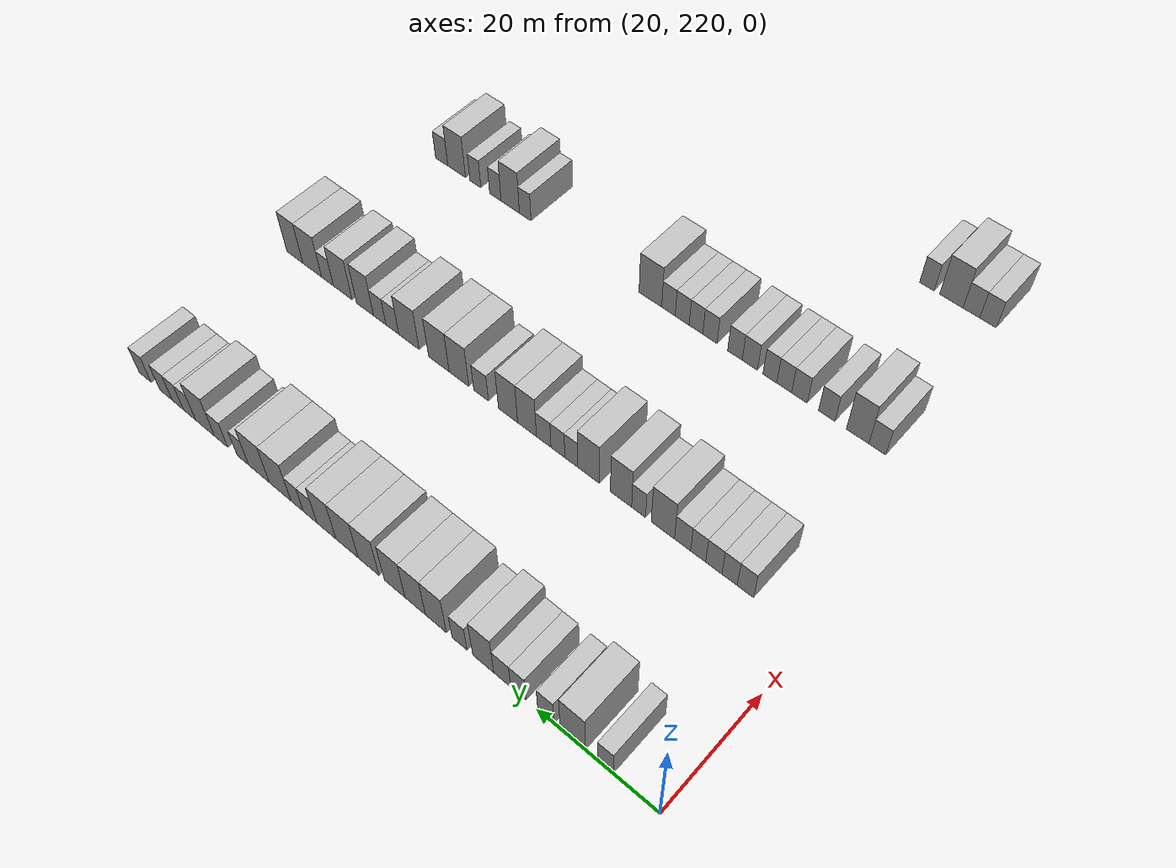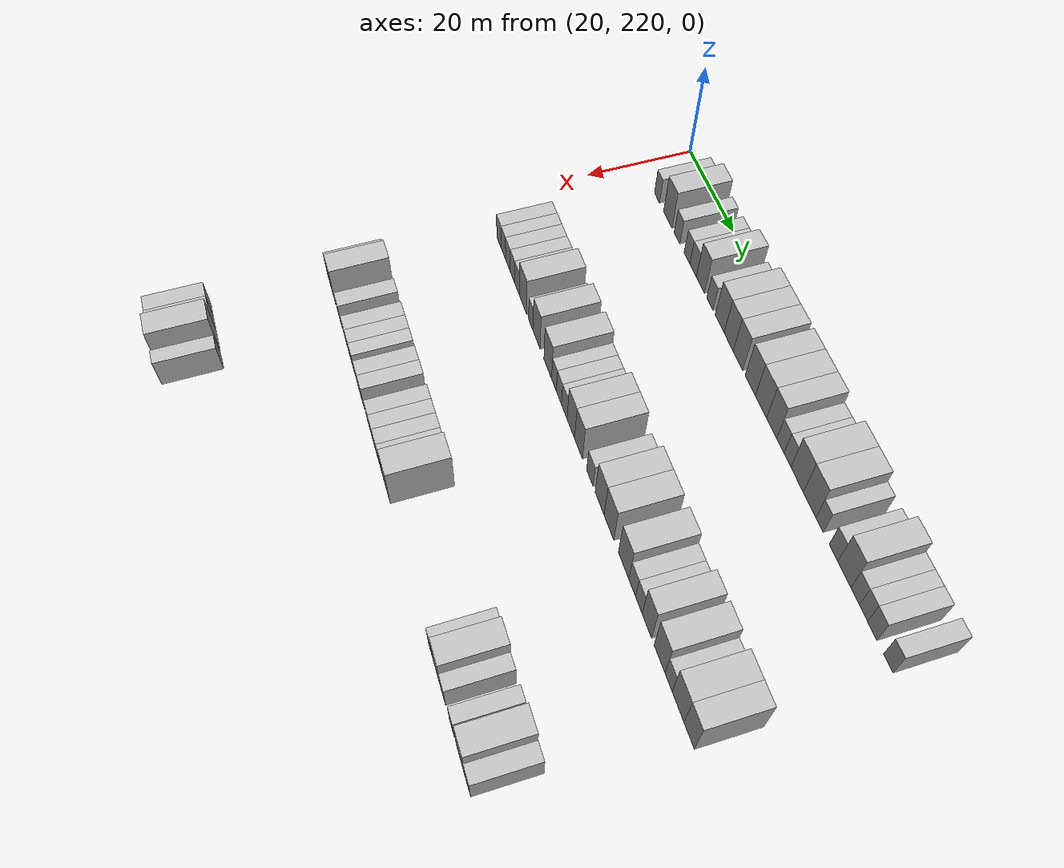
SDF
<sdf version="1.6">
 <world name="default">
  <model name="building_161">
   <static>1</static>
   <pose>25.0000 228.7055 0 0.000000 0.000000 0.000000</pose>
   <link name="link">
    <pose>0 0 3.00 0 0 0</pose>
    <collision name="collision"><geometry><box><size>10.0000 2.4988 6.0000</size></box></geometry></collision>
    <visual name="visual">
     <cast_shadows>0</cast_shadows>
     <geometry><box><size>10.0000 2.4988 6.0000</size></box></geometry>
     <material>
      <script>
       <uri>model://HANNAS_wall/materials/scripts</uri>
       <uri>model://HANNAS_wall/materials/textures</uri>
       <name>vrc/HANNAS_wall</name>
      </script>
     </material>
    </visual>
   </link>
  </model>
  <model name="building_162">
   <static>1</static>
   <pose>25.0000 234.0125 0 0.000000 0.000000 0.000000</pose>
   <link name="link">
    <pose>0 0 4.50 0 0 0</pose>
    <collision name="collision"><geometry><box><size>10.0000 4.1152 9.0000</size></box></geometry></collision>
    <visual name="visual">
     <cast_shadows>0</cast_shadows>
     <geometry><box><size>10.0000 4.1152 9.0000</size></box></geometry>
     <material>
      <script>
       <uri>model://HANNAS_wall/materials/scripts</uri>
       <uri>model://HANNAS_wall/materials/textures</uri>
       <name>vrc/HANNAS_wall</name>
      </script>
     </material>
    </visual>
   </link>
  </model>
  <model name="building_163">
   <static>1</static>
   <pose>25.0000 238.4279 0 0.000000 0.000000 0.000000</pose>
   <link name="link">
    <pose>0 0 3.00 0 0 0</pose>
    <collision name="collision"><geometry><box><size>10.0000 2.7155 6.0000</size></box></geometry></collision>
    <visual name="visual">
     <cast_shadows>0</cast_shadows>
     <geometry><box><size>10.0000 2.7155 6.0000</size></box></geometry>
     <material>
      <script>
       <uri>model://HANNAS_wall/materials/scripts</uri>
       <uri>model://HANNAS_wall/materials/textures</uri>
       <name>vrc/HANNAS_wall</name>
      </script>
     </material>
    </visual>
   </link>
  </model>
  <model name="building_164">
   <static>1</static>
   <pose>25.0000 243.0914 0 0.000000 0.000000 0.000000</pose>
   <link name="link">
    <pose>0 0 3.00 0 0 0</pose>
    <collision name="collision"><geometry><box><size>10.0000 2.6115 6.0000</size></box></geometry></collision>
    <visual name="visual">
     <cast_shadows>0</cast_shadows>
     <geometry><box><size>10.0000 2.6115 6.0000</size></box></geometry>
     <material>
      <script>
       <uri>model://HANNAS_wall/materials/scripts</uri>
       <uri>model://HANNAS_wall/materials/textures</uri>
       <name>vrc/HANNAS_wall</name>
      </script>
     </material>
    </visual>
   </link>
  </model>
  <model name="building_165">
   <static>1</static>
   <pose>25.0000 245.8708 0 0.000000 0.000000 0.000000</pose>
   <link name="link">
    <pose>0 0 3.00 0 0 0</pose>
    <collision name="collision"><geometry><box><size>10.0000 2.9474 6.0000</size></box></geometry></collision>
    <visual name="visual">
     <cast_shadows>0</cast_shadows>
     <geometry><box><size>10.0000 2.9474 6.0000</size></box></geometry>
     <material>
      <script>
       <uri>model://HANNAS_wall/materials/scripts</uri>
       <uri>model://HANNAS_wall/materials/textures</uri>
       <name>vrc/HANNAS_wall</name>
      </script>
     </material>
    </visual>
   </link>
  </model>
  <model name="building_166">
   <static>1</static>
   <pose>25.0000 249.1885 0 0.000000 0.000000 0.000000</pose>
   <link name="link">
    <pose>0 0 4.50 0 0 0</pose>
    <collision name="collision"><geometry><box><size>10.0000 3.6880 9.0000</size></box></geometry></collision>
    <visual name="visual">
     <cast_shadows>0</cast_shadows>
     <geometry><box><size>10.0000 3.6880 9.0000</size></box></geometry>
     <material>
      <script>
       <uri>model://HANNAS_wall/materials/scripts</uri>
       <uri>model://HANNAS_wall/materials/textures</uri>
       <name>vrc/HANNAS_wall</name>
      </script>
     </material>
    </visual>
   </link>
  </model>
  <model name="building_167">
   <static>1</static>
   <pose>25.0000 253.3828 0 0.000000 0.000000 0.000000</pose>
   <link name="link">
    <pose>0 0 3.00 0 0 0</pose>
    <collision name="collision"><geometry><box><size>10.0000 2.7004 6.0000</size></box></geometry></collision>
    <visual name="visual">
     <cast_shadows>0</cast_shadows>
     <geometry><box><size>10.0000 2.7004 6.0000</size></box></geometry>
     <material>
      <script>
       <uri>model://HANNAS_wall/materials/scripts</uri>
       <uri>model://HANNAS_wall/materials/textures</uri>
       <name>vrc/HANNAS_wall</name>
      </script>
     </material>
    </visual>
   </link>
  </model>
  <model name="building_168">
   <static>1</static>
   <pose>25.0000 257.6468 0 0.000000 0.000000 0.000000</pose>
   <link name="link">
    <pose>0 0 4.50 0 0 0</pose>
    <collision name="collision"><geometry><box><size>10.0000 3.8275 9.0000</size></box></geometry></collision>
    <visual name="visual">
     <cast_shadows>0</cast_shadows>
     <geometry><box><size>10.0000 3.8275 9.0000</size></box></geometry>
     <material>
      <script>
       <uri>model://HANNAS_wall/materials/scripts</uri>
       <uri>model://HANNAS_wall/materials/textures</uri>
       <name>vrc/HANNAS_wall</name>
      </script>
     </material>
    </visual>
   </link>
  </model>
  <model name="building_169">
   <static>1</static>
   <pose>25.0000 261.4607 0 0.000000 0.000000 0.000000</pose>
   <link name="link">
    <pose>0 0 4.50 0 0 0</pose>
    <collision name="collision"><geometry><box><size>10.0000 3.8004 9.0000</size></box></geometry></collision>
    <visual name="visual">
     <cast_shadows>0</cast_shadows>
     <geometry><box><size>10.0000 3.8004 9.0000</size></box></geometry>
     <material>
      <script>
       <uri>model://HANNAS_wall/materials/scripts</uri>
       <uri>model://HANNAS_wall/materials/textures</uri>
       <name>vrc/HANNAS_wall</name>
      </script>
     </material>
    </visual>
   </link>
  </model>
  <model name="building_170">
   <static>1</static>
   <pose>25.0000 265.3131 0 0.000000 0.000000 0.000000</pose>
   <link name="link">
    <pose>0 0 4.50 0 0 0</pose>
    <collision name="collision"><geometry><box><size>10.0000 3.9043 9.0000</size></box></geometry></collision>
    <visual name="visual">
     <cast_shadows>0</cast_shadows>
     <geometry><box><size>10.0000 3.9043 9.0000</size></box></geometry>
     <material>
      <script>
       <uri>model://HANNAS_wall/materials/scripts</uri>
       <uri>model://HANNAS_wall/materials/textures</uri>
       <name>vrc/HANNAS_wall</name>
      </script>
     </material>
    </visual>
   </link>
  </model>
  <model name="building_171">
   <static>1</static>
   <pose>25.0000 270.2822 0 0.000000 0.000000 0.000000</pose>
   <link name="link">
    <pose>0 0 4.50 0 0 0</pose>
    <collision name="collision"><geometry><box><size>10.0000 4.0339 9.0000</size></box></geometry></collision>
    <visual name="visual">
     <cast_shadows>0</cast_shadows>
     <geometry><box><size>10.0000 4.0339 9.0000</size></box></geometry>
     <material>
      <script>
       <uri>model://HANNAS_wall/materials/scripts</uri>
       <uri>model://HANNAS_wall/materials/textures</uri>
       <name>vrc/HANNAS_wall</name>
      </script>
     </material>
    </visual>
   </link>
  </model>
  <model name="building_172">
   <static>1</static>
   <pose>25.0000 274.4832 0 0.000000 0.000000 0.000000</pose>
   <link name="link">
    <pose>0 0 4.50 0 0 0</pose>
    <collision name="collision"><geometry><box><size>10.0000 4.3679 9.0000</size></box></geometry></collision>
    <visual name="visual">
     <cast_shadows>0</cast_shadows>
     <geometry><box><size>10.0000 4.3679 9.0000</size></box></geometry>
     <material>
      <script>
       <uri>model://HANNAS_wall/materials/scripts</uri>
       <uri>model://HANNAS_wall/materials/textures</uri>
       <name>vrc/HANNAS_wall</name>
      </script>
     </material>
    </visual>
   </link>
  </model>
  <model name="building_173">
   <static>1</static>
   <pose>25.0000 278.5855 0 0.000000 0.000000 0.000000</pose>
   <link name="link">
    <pose>0 0 4.50 0 0 0</pose>
    <collision name="collision"><geometry><box><size>10.0000 3.8367 9.0000</size></box></geometry></collision>
    <visual name="visual">
     <cast_shadows>0</cast_shadows>
     <geometry><box><size>10.0000 3.8367 9.0000</size></box></geometry>
     <material>
      <script>
       <uri>model://HANNAS_wall/materials/scripts</uri>
       <uri>model://HANNAS_wall/materials/textures</uri>
       <name>vrc/HANNAS_wall</name>
      </script>
     </material>
    </visual>
   </link>
  </model>
  <model name="building_174">
   <static>1</static>
   <pose>25.0000 281.8658 0 0.000000 0.000000 0.000000</pose>
   <link name="link">
    <pose>0 0 3.00 0 0 0</pose>
    <collision name="collision"><geometry><box><size>10.0000 2.7238 6.0000</size></box></geometry></collision>
    <visual name="visual">
     <cast_shadows>0</cast_shadows>
     <geometry><box><size>10.0000 2.7238 6.0000</size></box></geometry>
     <material>
      <script>
       <uri>model://HANNAS_wall/materials/scripts</uri>
       <uri>model://HANNAS_wall/materials/textures</uri>
       <name>vrc/HANNAS_wall</name>
      </script>
     </material>
    </visual>
   </link>
  </model>
  <model name="building_175">
   <static>1</static>
   <pose>25.0000 284.4926 0 0.000000 0.000000 0.000000</pose>
   <link name="link">
    <pose>0 0 3.00 0 0 0</pose>
    <collision name="collision"><geometry><box><size>10.0000 2.5299 6.0000</size></box></geometry></collision>
    <visual name="visual">
     <cast_shadows>0</cast_shadows>
     <geometry><box><size>10.0000 2.5299 6.0000</size></box></geometry>
     <material>
      <script>
       <uri>model://HANNAS_wall/materials/scripts</uri>
       <uri>model://HANNAS_wall/materials/textures</uri>
       <name>vrc/HANNAS_wall</name>
      </script>
     </material>
    </visual>
   </link>
  </model>
  <model name="building_176">
   <static>1</static>
   <pose>25.0000 287.9889 0 0.000000 0.000000 0.000000</pose>
   <link name="link">
    <pose>0 0 4.50 0 0 0</pose>
    <collision name="collision"><geometry><box><size>10.0000 4.4626 9.0000</size></box></geometry></collision>
    <visual name="visual">
     <cast_shadows>0</cast_shadows>
     <geometry><box><size>10.0000 4.4626 9.0000</size></box></geometry>
     <material>
      <script>
       <uri>model://HANNAS_wall/materials/scripts</uri>
       <uri>model://HANNAS_wall/materials/textures</uri>
       <name>vrc/HANNAS_wall</name>
      </script>
     </material>
    </visual>
   </link>
  </model>
  <model name="building_177">
   <static>1</static>
   <pose>25.0000 292.4340 0 0.000000 0.000000 0.000000</pose>
   <link name="link">
    <pose>0 0 4.50 0 0 0</pose>
    <collision name="collision"><geometry><box><size>10.0000 4.4276 9.0000</size></box></geometry></collision>
    <visual name="visual">
     <cast_shadows>0</cast_shadows>
     <geometry><box><size>10.0000 4.4276 9.0000</size></box></geometry>
     <material>
      <script>
       <uri>model://HANNAS_wall/materials/scripts</uri>
       <uri>model://HANNAS_wall/materials/textures</uri>
       <name>vrc/HANNAS_wall</name>
      </script>
     </material>
    </visual>
   </link>
  </model>
  <model name="building_178">
   <static>1</static>
   <pose>25.0000 295.8996 0 0.000000 0.000000 0.000000</pose>
   <link name="link">
    <pose>0 0 3.00 0 0 0</pose>
    <collision name="collision"><geometry><box><size>10.0000 2.5036 6.0000</size></box></geometry></collision>
    <visual name="visual">
     <cast_shadows>0</cast_shadows>
     <geometry><box><size>10.0000 2.5036 6.0000</size></box></geometry>
     <material>
      <script>
       <uri>model://HANNAS_wall/materials/scripts</uri>
       <uri>model://HANNAS_wall/materials/textures</uri>
       <name>vrc/HANNAS_wall</name>
      </script>
     </material>
    </visual>
   </link>
  </model>
  <model name="building_179">
   <static>1</static>
   <pose>25.0000 300.5767 0 0.000000 0.000000 0.000000</pose>
   <link name="link">
    <pose>0 0 3.00 0 0 0</pose>
    <collision name="collision"><geometry><box><size>10.0000 2.8506 6.0000</size></box></geometry></collision>
    <visual name="visual">
     <cast_shadows>0</cast_shadows>
     <geometry><box><size>10.0000 2.8506 6.0000</size></box></geometry>
     <material>
      <script>
       <uri>model://HANNAS_wall/materials/scripts</uri>
       <uri>model://HANNAS_wall/materials/textures</uri>
       <name>vrc/HANNAS_wall</name>
      </script>
     </material>
    </visual>
   </link>
  </model>
  <model name="building_180">
   <static>1</static>
   <pose>25.0000 304.1181 0 0.000000 0.000000 0.000000</pose>
   <link name="link">
    <pose>0 0 4.50 0 0 0</pose>
    <collision name="collision"><geometry><box><size>10.0000 4.2322 9.0000</size></box></geometry></collision>
    <visual name="visual">
     <cast_shadows>0</cast_shadows>
     <geometry><box><size>10.0000 4.2322 9.0000</size></box></geometry>
     <material>
      <script>
       <uri>model://HANNAS_wall/materials/scripts</uri>
       <uri>model://HANNAS_wall/materials/textures</uri>
       <name>vrc/HANNAS_wall</name>
      </script>
     </material>
    </visual>
   </link>
  </model>
  <model name="building_181">
   <static>1</static>
   <pose>25.0000 307.5990 0 0.000000 0.000000 0.000000</pose>
   <link name="link">
    <pose>0 0 3.00 0 0 0</pose>
    <collision name="collision"><geometry><box><size>10.0000 2.7296 6.0000</size></box></geometry></collision>
    <visual name="visual">
     <cast_shadows>0</cast_shadows>
     <geometry><box><size>10.0000 2.7296 6.0000</size></box></geometry>
     <material>
      <script>
       <uri>model://HANNAS_wall/materials/scripts</uri>
       <uri>model://HANNAS_wall/materials/textures</uri>
       <name>vrc/HANNAS_wall</name>
      </script>
     </material>
    </visual>
   </link>
  </model>
  <model name="building_182">
   <static>1</static>
   <pose>25.0000 310.2514 0 0.000000 0.000000 0.000000</pose>
   <link name="link">
    <pose>0 0 3.00 0 0 0</pose>
    <collision name="collision"><geometry><box><size>10.0000 2.5752 6.0000</size></box></geometry></collision>
    <visual name="visual">
     <cast_shadows>0</cast_shadows>
     <geometry><box><size>10.0000 2.5752 6.0000</size></box></geometry>
     <material>
      <script>
       <uri>model://HANNAS_wall/materials/scripts</uri>
       <uri>model://HANNAS_wall/materials/textures</uri>
       <name>vrc/HANNAS_wall</name>
      </script>
     </material>
    </visual>
   </link>
  </model>
  <model name="building_183">
   <static>1</static>
   <pose>25.0000 312.9703 0 0.000000 0.000000 0.000000</pose>
   <link name="link">
    <pose>0 0 3.00 0 0 0</pose>
    <collision name="collision"><geometry><box><size>10.0000 2.8624 6.0000</size></box></geometry></collision>
    <visual name="visual">
     <cast_shadows>0</cast_shadows>
     <geometry><box><size>10.0000 2.8624 6.0000</size></box></geometry>
     <material>
      <script>
       <uri>model://HANNAS_wall/materials/scripts</uri>
       <uri>model://HANNAS_wall/materials/textures</uri>
       <name>vrc/HANNAS_wall</name>
      </script>
     </material>
    </visual>
   </link>
  </model>
  <model name="building_184">
   <static>1</static>
   <pose>25.0000 317.8100 0 0.000000 0.000000 0.000000</pose>
   <link name="link">
    <pose>0 0 3.00 0 0 0</pose>
    <collision name="collision"><geometry><box><size>10.0000 2.8171 6.0000</size></box></geometry></collision>
    <visual name="visual">
     <cast_shadows>0</cast_shadows>
     <geometry><box><size>10.0000 2.8171 6.0000</size></box></geometry>
     <material>
      <script>
       <uri>model://HANNAS_wall/materials/scripts</uri>
       <uri>model://HANNAS_wall/materials/textures</uri>
       <name>vrc/HANNAS_wall</name>
      </script>
     </material>
    </visual>
   </link>
  </model>
  <model name="building_395">
   <static>1</static>
   <pose>55.0000 230.2919 0 0.000000 0.000000 0.000000</pose>
   <link name="link">
    <pose>0 0 3.00 0 0 0</pose>
    <collision name="collision"><geometry><box><size>10.0000 2.7157 6.0000</size></box></geometry></collision>
    <visual name="visual">
     <cast_shadows>0</cast_shadows>
     <geometry><box><size>10.0000 2.7157 6.0000</size></box></geometry>
     <material>
      <script>
       <uri>model://HANNAS_wall/materials/scripts</uri>
       <uri>model://HANNAS_wall/materials/textures</uri>
       <name>vrc/HANNAS_wall</name>
      </script>
     </material>
    </visual>
   </link>
  </model>
  <model name="building_396">
   <static>1</static>
   <pose>55.0000 232.9294 0 0.000000 0.000000 0.000000</pose>
   <link name="link">
    <pose>0 0 3.00 0 0 0</pose>
    <collision name="collision"><geometry><box><size>10.0000 2.5594 6.0000</size></box></geometry></collision>
    <visual name="visual">
     <cast_shadows>0</cast_shadows>
     <geometry><box><size>10.0000 2.5594 6.0000</size></box></geometry>
     <material>
      <script>
       <uri>model://HANNAS_wall/materials/scripts</uri>
       <uri>model://HANNAS_wall/materials/textures</uri>
       <name>vrc/HANNAS_wall</name>
      </script>
     </material>
    </visual>
   </link>
  </model>
  <model name="building_397">
   <static>1</static>
   <pose>55.0000 235.5806 0 0.000000 0.000000 0.000000</pose>
   <link name="link">
    <pose>0 0 3.00 0 0 0</pose>
    <collision name="collision"><geometry><box><size>10.0000 2.7430 6.0000</size></box></geometry></collision>
    <visual name="visual">
     <cast_shadows>0</cast_shadows>
     <geometry><box><size>10.0000 2.7430 6.0000</size></box></geometry>
     <material>
      <script>
       <uri>model://HANNAS_wall/materials/scripts</uri>
       <uri>model://HANNAS_wall/materials/textures</uri>
       <name>vrc/HANNAS_wall</name>
      </script>
     </material>
    </visual>
   </link>
  </model>
  <model name="building_398">
   <static>1</static>
   <pose>55.0000 238.2325 0 0.000000 0.000000 0.000000</pose>
   <link name="link">
    <pose>0 0 3.00 0 0 0</pose>
    <collision name="collision"><geometry><box><size>10.0000 2.5609 6.0000</size></box></geometry></collision>
    <visual name="visual">
     <cast_shadows>0</cast_shadows>
     <geometry><box><size>10.0000 2.5609 6.0000</size></box></geometry>
     <material>
      <script>
       <uri>model://HANNAS_wall/materials/scripts</uri>
       <uri>model://HANNAS_wall/materials/textures</uri>
       <name>vrc/HANNAS_wall</name>
      </script>
     </material>
    </visual>
   </link>
  </model>
  <model name="building_399">
   <static>1</static>
   <pose>55.0000 240.9088 0 0.000000 0.000000 0.000000</pose>
   <link name="link">
    <pose>0 0 3.00 0 0 0</pose>
    <collision name="collision"><geometry><box><size>10.0000 2.7916 6.0000</size></box></geometry></collision>
    <visual name="visual">
     <cast_shadows>0</cast_shadows>
     <geometry><box><size>10.0000 2.7916 6.0000</size></box></geometry>
     <material>
      <script>
       <uri>model://HANNAS_wall/materials/scripts</uri>
       <uri>model://HANNAS_wall/materials/textures</uri>
       <name>vrc/HANNAS_wall</name>
      </script>
     </material>
    </visual>
   </link>
  </model>
  <model name="building_400">
   <static>1</static>
   <pose>55.0000 244.3410 0 0.000000 0.000000 0.000000</pose>
   <link name="link">
    <pose>0 0 4.50 0 0 0</pose>
    <collision name="collision"><geometry><box><size>10.0000 4.0728 9.0000</size></box></geometry></collision>
    <visual name="visual">
     <cast_shadows>0</cast_shadows>
     <geometry><box><size>10.0000 4.0728 9.0000</size></box></geometry>
     <material>
      <script>
       <uri>model://HANNAS_wall/materials/scripts</uri>
       <uri>model://HANNAS_wall/materials/textures</uri>
       <name>vrc/HANNAS_wall</name>
      </script>
     </material>
    </visual>
   </link>
  </model>
  <model name="building_401">
   <static>1</static>
   <pose>55.0000 248.6175 0 0.000000 0.000000 0.000000</pose>
   <link name="link">
    <pose>0 0 3.00 0 0 0</pose>
    <collision name="collision"><geometry><box><size>10.0000 2.4803 6.0000</size></box></geometry></collision>
    <visual name="visual">
     <cast_shadows>0</cast_shadows>
     <geometry><box><size>10.0000 2.4803 6.0000</size></box></geometry>
     <material>
      <script>
       <uri>model://HANNAS_wall/materials/scripts</uri>
       <uri>model://HANNAS_wall/materials/textures</uri>
       <name>vrc/HANNAS_wall</name>
      </script>
     </material>
    </visual>
   </link>
  </model>
  <model name="building_402">
   <static>1</static>
   <pose>55.0000 251.7710 0 0.000000 0.000000 0.000000</pose>
   <link name="link">
    <pose>0 0 4.50 0 0 0</pose>
    <collision name="collision"><geometry><box><size>10.0000 3.8267 9.0000</size></box></geometry></collision>
    <visual name="visual">
     <cast_shadows>0</cast_shadows>
     <geometry><box><size>10.0000 3.8267 9.0000</size></box></geometry>
     <material>
      <script>
       <uri>model://HANNAS_wall/materials/scripts</uri>
       <uri>model://HANNAS_wall/materials/textures</uri>
       <name>vrc/HANNAS_wall</name>
      </script>
     </material>
    </visual>
   </link>
  </model>
  <model name="building_403">
   <static>1</static>
   <pose>55.0000 257.7013 0 0.000000 0.000000 0.000000</pose>
   <link name="link">
    <pose>0 0 4.50 0 0 0</pose>
    <collision name="collision"><geometry><box><size>10.0000 4.0338 9.0000</size></box></geometry></collision>
    <visual name="visual">
     <cast_shadows>0</cast_shadows>
     <geometry><box><size>10.0000 4.0338 9.0000</size></box></geometry>
     <material>
      <script>
       <uri>model://HANNAS_wall/materials/scripts</uri>
       <uri>model://HANNAS_wall/materials/textures</uri>
       <name>vrc/HANNAS_wall</name>
      </script>
     </material>
    </visual>
   </link>
  </model>
  <model name="building_404">
   <static>1</static>
   <pose>55.0000 260.9278 0 0.000000 0.000000 0.000000</pose>
   <link name="link">
    <pose>0 0 3.00 0 0 0</pose>
    <collision name="collision"><geometry><box><size>10.0000 2.4193 6.0000</size></box></geometry></collision>
    <visual name="visual">
     <cast_shadows>0</cast_shadows>
     <geometry><box><size>10.0000 2.4193 6.0000</size></box></geometry>
     <material>
      <script>
       <uri>model://HANNAS_wall/materials/scripts</uri>
       <uri>model://HANNAS_wall/materials/textures</uri>
       <name>vrc/HANNAS_wall</name>
      </script>
     </material>
    </visual>
   </link>
  </model>
  <model name="building_405">
   <static>1</static>
   <pose>55.0000 263.4477 0 0.000000 0.000000 0.000000</pose>
   <link name="link">
    <pose>0 0 3.00 0 0 0</pose>
    <collision name="collision"><geometry><box><size>10.0000 2.6205 6.0000</size></box></geometry></collision>
    <visual name="visual">
     <cast_shadows>0</cast_shadows>
     <geometry><box><size>10.0000 2.6205 6.0000</size></box></geometry>
     <material>
      <script>
       <uri>model://HANNAS_wall/materials/scripts</uri>
       <uri>model://HANNAS_wall/materials/textures</uri>
       <name>vrc/HANNAS_wall</name>
      </script>
     </material>
    </visual>
   </link>
  </model>
  <model name="building_406">
   <static>1</static>
   <pose>55.0000 266.1512 0 0.000000 0.000000 0.000000</pose>
   <link name="link">
    <pose>0 0 3.00 0 0 0</pose>
    <collision name="collision"><geometry><box><size>10.0000 2.7865 6.0000</size></box></geometry></collision>
    <visual name="visual">
     <cast_shadows>0</cast_shadows>
     <geometry><box><size>10.0000 2.7865 6.0000</size></box></geometry>
     <material>
      <script>
       <uri>model://HANNAS_wall/materials/scripts</uri>
       <uri>model://HANNAS_wall/materials/textures</uri>
       <name>vrc/HANNAS_wall</name>
      </script>
     </material>
    </visual>
   </link>
  </model>
  <model name="building_407">
   <static>1</static>
   <pose>55.0000 269.3727 0 0.000000 0.000000 0.000000</pose>
   <link name="link">
    <pose>0 0 4.50 0 0 0</pose>
    <collision name="collision"><geometry><box><size>10.0000 3.6564 9.0000</size></box></geometry></collision>
    <visual name="visual">
     <cast_shadows>0</cast_shadows>
     <geometry><box><size>10.0000 3.6564 9.0000</size></box></geometry>
     <material>
      <script>
       <uri>model://HANNAS_wall/materials/scripts</uri>
       <uri>model://HANNAS_wall/materials/textures</uri>
       <name>vrc/HANNAS_wall</name>
      </script>
     </material>
    </visual>
   </link>
  </model>
  <model name="building_408">
   <static>1</static>
   <pose>55.0000 273.0823 0 0.000000 0.000000 0.000000</pose>
   <link name="link">
    <pose>0 0 4.50 0 0 0</pose>
    <collision name="collision"><geometry><box><size>10.0000 3.7629 9.0000</size></box></geometry></collision>
    <visual name="visual">
     <cast_shadows>0</cast_shadows>
     <geometry><box><size>10.0000 3.7629 9.0000</size></box></geometry>
     <material>
      <script>
       <uri>model://HANNAS_wall/materials/scripts</uri>
       <uri>model://HANNAS_wall/materials/textures</uri>
       <name>vrc/HANNAS_wall</name>
      </script>
     </material>
    </visual>
   </link>
  </model>
  <model name="building_409">
   <static>1</static>
   <pose>55.0000 278.4408 0 0.000000 0.000000 0.000000</pose>
   <link name="link">
    <pose>0 0 3.00 0 0 0</pose>
    <collision name="collision"><geometry><box><size>10.0000 2.9542 6.0000</size></box></geometry></collision>
    <visual name="visual">
     <cast_shadows>0</cast_shadows>
     <geometry><box><size>10.0000 2.9542 6.0000</size></box></geometry>
     <material>
      <script>
       <uri>model://HANNAS_wall/materials/scripts</uri>
       <uri>model://HANNAS_wall/materials/textures</uri>
       <name>vrc/HANNAS_wall</name>
      </script>
     </material>
    </visual>
   </link>
  </model>
  <model name="building_410">
   <static>1</static>
   <pose>55.0000 282.9300 0 0.000000 0.000000 0.000000</pose>
   <link name="link">
    <pose>0 0 4.50 0 0 0</pose>
    <collision name="collision"><geometry><box><size>10.0000 4.0242 9.0000</size></box></geometry></collision>
    <visual name="visual">
     <cast_shadows>0</cast_shadows>
     <geometry><box><size>10.0000 4.0242 9.0000</size></box></geometry>
     <material>
      <script>
       <uri>model://HANNAS_wall/materials/scripts</uri>
       <uri>model://HANNAS_wall/materials/textures</uri>
       <name>vrc/HANNAS_wall</name>
      </script>
     </material>
    </visual>
   </link>
  </model>
  <model name="building_411">
   <static>1</static>
   <pose>55.0000 287.0703 0 0.000000 0.000000 0.000000</pose>
   <link name="link">
    <pose>0 0 4.50 0 0 0</pose>
    <collision name="collision"><geometry><box><size>10.0000 4.2565 9.0000</size></box></geometry></collision>
    <visual name="visual">
     <cast_shadows>0</cast_shadows>
     <geometry><box><size>10.0000 4.2565 9.0000</size></box></geometry>
     <material>
      <script>
       <uri>model://HANNAS_wall/materials/scripts</uri>
       <uri>model://HANNAS_wall/materials/textures</uri>
       <name>vrc/HANNAS_wall</name>
      </script>
     </material>
    </visual>
   </link>
  </model>
  <model name="building_412">
   <static>1</static>
   <pose>55.0000 293.3801 0 0.000000 0.000000 0.000000</pose>
   <link name="link">
    <pose>0 0 4.50 0 0 0</pose>
    <collision name="collision"><geometry><box><size>10.0000 4.3631 9.0000</size></box></geometry></collision>
    <visual name="visual">
     <cast_shadows>0</cast_shadows>
     <geometry><box><size>10.0000 4.3631 9.0000</size></box></geometry>
     <material>
      <script>
       <uri>model://HANNAS_wall/materials/scripts</uri>
       <uri>model://HANNAS_wall/materials/textures</uri>
       <name>vrc/HANNAS_wall</name>
      </script>
     </material>
    </visual>
   </link>
  </model>
  <model name="building_413">
   <static>1</static>
   <pose>55.0000 296.9565 0 0.000000 0.000000 0.000000</pose>
   <link name="link">
    <pose>0 0 3.00 0 0 0</pose>
    <collision name="collision"><geometry><box><size>10.0000 2.7897 6.0000</size></box></geometry></collision>
    <visual name="visual">
     <cast_shadows>0</cast_shadows>
     <geometry><box><size>10.0000 2.7897 6.0000</size></box></geometry>
     <material>
      <script>
       <uri>model://HANNAS_wall/materials/scripts</uri>
       <uri>model://HANNAS_wall/materials/textures</uri>
       <name>vrc/HANNAS_wall</name>
      </script>
     </material>
    </visual>
   </link>
  </model>
  <model name="building_414">
   <static>1</static>
   <pose>55.0000 299.7056 0 0.000000 0.000000 0.000000</pose>
   <link name="link">
    <pose>0 0 3.00 0 0 0</pose>
    <collision name="collision"><geometry><box><size>10.0000 2.7084 6.0000</size></box></geometry></collision>
    <visual name="visual">
     <cast_shadows>0</cast_shadows>
     <geometry><box><size>10.0000 2.7084 6.0000</size></box></geometry>
     <material>
      <script>
       <uri>model://HANNAS_wall/materials/scripts</uri>
       <uri>model://HANNAS_wall/materials/textures</uri>
       <name>vrc/HANNAS_wall</name>
      </script>
     </material>
    </visual>
   </link>
  </model>
  <model name="building_415">
   <static>1</static>
   <pose>55.0000 302.9279 0 0.000000 0.000000 0.000000</pose>
   <link name="link">
    <pose>0 0 4.50 0 0 0</pose>
    <collision name="collision"><geometry><box><size>10.0000 3.7362 9.0000</size></box></geometry></collision>
    <visual name="visual">
     <cast_shadows>0</cast_shadows>
     <geometry><box><size>10.0000 3.7362 9.0000</size></box></geometry>
     <material>
      <script>
       <uri>model://HANNAS_wall/materials/scripts</uri>
       <uri>model://HANNAS_wall/materials/textures</uri>
       <name>vrc/HANNAS_wall</name>
      </script>
     </material>
    </visual>
   </link>
  </model>
  <model name="building_416">
   <static>1</static>
   <pose>55.0000 307.8935 0 0.000000 0.000000 0.000000</pose>
   <link name="link">
    <pose>0 0 4.50 0 0 0</pose>
    <collision name="collision"><geometry><box><size>10.0000 4.1949 9.0000</size></box></geometry></collision>
    <visual name="visual">
     <cast_shadows>0</cast_shadows>
     <geometry><box><size>10.0000 4.1949 9.0000</size></box></geometry>
     <material>
      <script>
       <uri>model://HANNAS_wall/materials/scripts</uri>
       <uri>model://HANNAS_wall/materials/textures</uri>
       <name>vrc/HANNAS_wall</name>
      </script>
     </material>
    </visual>
   </link>
  </model>
  <model name="building_417">
   <static>1</static>
   <pose>55.0000 311.3385 0 0.000000 0.000000 0.000000</pose>
   <link name="link">
    <pose>0 0 3.00 0 0 0</pose>
    <collision name="collision"><geometry><box><size>10.0000 2.6950 6.0000</size></box></geometry></collision>
    <visual name="visual">
     <cast_shadows>0</cast_shadows>
     <geometry><box><size>10.0000 2.6950 6.0000</size></box></geometry>
     <material>
      <script>
       <uri>model://HANNAS_wall/materials/scripts</uri>
       <uri>model://HANNAS_wall/materials/textures</uri>
       <name>vrc/HANNAS_wall</name>
      </script>
     </material>
    </visual>
   </link>
  </model>
  <model name="building_418">
   <static>1</static>
   <pose>55.0000 314.8472 0 0.000000 0.000000 0.000000</pose>
   <link name="link">
    <pose>0 0 4.50 0 0 0</pose>
    <collision name="collision"><geometry><box><size>10.0000 4.3226 9.0000</size></box></geometry></collision>
    <visual name="visual">
     <cast_shadows>0</cast_shadows>
     <geometry><box><size>10.0000 4.3226 9.0000</size></box></geometry>
     <material>
      <script>
       <uri>model://HANNAS_wall/materials/scripts</uri>
       <uri>model://HANNAS_wall/materials/textures</uri>
       <name>vrc/HANNAS_wall</name>
      </script>
     </material>
    </visual>
   </link>
  </model>
  <model name="building_419">
   <static>1</static>
   <pose>55.0000 318.8748 0 0.000000 0.000000 0.000000</pose>
   <link name="link">
    <pose>0 0 4.50 0 0 0</pose>
    <collision name="collision"><geometry><box><size>10.0000 3.7324 9.0000</size></box></geometry></collision>
    <visual name="visual">
     <cast_shadows>0</cast_shadows>
     <geometry><box><size>10.0000 3.7324 9.0000</size></box></geometry>
     <material>
      <script>
       <uri>model://HANNAS_wall/materials/scripts</uri>
       <uri>model://HANNAS_wall/materials/textures</uri>
       <name>vrc/HANNAS_wall</name>
      </script>
     </material>
    </visual>
   </link>
  </model>
  <model name="building_622">
   <static>1</static>
   <pose>85.0000 229.8219 0 0.000000 0.000000 0.000000</pose>
   <link name="link">
    <pose>0 0 3.00 0 0 0</pose>
    <collision name="collision"><geometry><box><size>10.0000 2.8839 6.0000</size></box></geometry></collision>
    <visual name="visual">
     <cast_shadows>0</cast_shadows>
     <geometry><box><size>10.0000 2.8839 6.0000</size></box></geometry>
     <material>
      <script>
       <uri>model://HANNAS_wall/materials/scripts</uri>
       <uri>model://HANNAS_wall/materials/textures</uri>
       <name>vrc/HANNAS_wall</name>
      </script>
     </material>
    </visual>
   </link>
  </model>
  <model name="building_623">
   <static>1</static>
   <pose>85.0000 233.1774 0 0.000000 0.000000 0.000000</pose>
   <link name="link">
    <pose>0 0 4.50 0 0 0</pose>
    <collision name="collision"><geometry><box><size>10.0000 3.8270 9.0000</size></box></geometry></collision>
    <visual name="visual">
     <cast_shadows>0</cast_shadows>
     <geometry><box><size>10.0000 3.8270 9.0000</size></box></geometry>
     <material>
      <script>
       <uri>model://HANNAS_wall/materials/scripts</uri>
       <uri>model://HANNAS_wall/materials/textures</uri>
       <name>vrc/HANNAS_wall</name>
      </script>
     </material>
    </visual>
   </link>
  </model>
  <model name="building_624">
   <static>1</static>
   <pose>85.0000 238.5281 0 0.000000 0.000000 0.000000</pose>
   <link name="link">
    <pose>0 0 3.00 0 0 0</pose>
    <collision name="collision"><geometry><box><size>10.0000 2.8745 6.0000</size></box></geometry></collision>
    <visual name="visual">
     <cast_shadows>0</cast_shadows>
     <geometry><box><size>10.0000 2.8745 6.0000</size></box></geometry>
     <material>
      <script>
       <uri>model://HANNAS_wall/materials/scripts</uri>
       <uri>model://HANNAS_wall/materials/textures</uri>
       <name>vrc/HANNAS_wall</name>
      </script>
     </material>
    </visual>
   </link>
  </model>
  <model name="building_625">
   <static>1</static>
   <pose>85.0000 243.3661 0 0.000000 0.000000 0.000000</pose>
   <link name="link">
    <pose>0 0 3.00 0 0 0</pose>
    <collision name="collision"><geometry><box><size>10.0000 2.8015 6.0000</size></box></geometry></collision>
    <visual name="visual">
     <cast_shadows>0</cast_shadows>
     <geometry><box><size>10.0000 2.8015 6.0000</size></box></geometry>
     <material>
      <script>
       <uri>model://HANNAS_wall/materials/scripts</uri>
       <uri>model://HANNAS_wall/materials/textures</uri>
       <name>vrc/HANNAS_wall</name>
      </script>
     </material>
    </visual>
   </link>
  </model>
  <model name="building_626">
   <static>1</static>
   <pose>85.0000 246.1010 0 0.000000 0.000000 0.000000</pose>
   <link name="link">
    <pose>0 0 3.00 0 0 0</pose>
    <collision name="collision"><geometry><box><size>10.0000 2.6684 6.0000</size></box></geometry></collision>
    <visual name="visual">
     <cast_shadows>0</cast_shadows>
     <geometry><box><size>10.0000 2.6684 6.0000</size></box></geometry>
     <material>
      <script>
       <uri>model://HANNAS_wall/materials/scripts</uri>
       <uri>model://HANNAS_wall/materials/textures</uri>
       <name>vrc/HANNAS_wall</name>
      </script>
     </material>
    </visual>
   </link>
  </model>
  <model name="building_627">
   <static>1</static>
   <pose>85.0000 248.6982 0 0.000000 0.000000 0.000000</pose>
   <link name="link">
    <pose>0 0 3.00 0 0 0</pose>
    <collision name="collision"><geometry><box><size>10.0000 2.5260 6.0000</size></box></geometry></collision>
    <visual name="visual">
     <cast_shadows>0</cast_shadows>
     <geometry><box><size>10.0000 2.5260 6.0000</size></box></geometry>
     <material>
      <script>
       <uri>model://HANNAS_wall/materials/scripts</uri>
       <uri>model://HANNAS_wall/materials/textures</uri>
       <name>vrc/HANNAS_wall</name>
      </script>
     </material>
    </visual>
   </link>
  </model>
  <model name="building_628">
   <static>1</static>
   <pose>85.0000 252.3730 0 0.000000 0.000000 0.000000</pose>
   <link name="link">
    <pose>0 0 3.00 0 0 0</pose>
    <collision name="collision"><geometry><box><size>10.0000 2.8237 6.0000</size></box></geometry></collision>
    <visual name="visual">
     <cast_shadows>0</cast_shadows>
     <geometry><box><size>10.0000 2.8237 6.0000</size></box></geometry>
     <material>
      <script>
       <uri>model://HANNAS_wall/materials/scripts</uri>
       <uri>model://HANNAS_wall/materials/textures</uri>
       <name>vrc/HANNAS_wall</name>
      </script>
     </material>
    </visual>
   </link>
  </model>
  <model name="building_629">
   <static>1</static>
   <pose>85.0000 255.1433 0 0.000000 0.000000 0.000000</pose>
   <link name="link">
    <pose>0 0 3.00 0 0 0</pose>
    <collision name="collision"><geometry><box><size>10.0000 2.7170 6.0000</size></box></geometry></collision>
    <visual name="visual">
     <cast_shadows>0</cast_shadows>
     <geometry><box><size>10.0000 2.7170 6.0000</size></box></geometry>
     <material>
      <script>
       <uri>model://HANNAS_wall/materials/scripts</uri>
       <uri>model://HANNAS_wall/materials/textures</uri>
       <name>vrc/HANNAS_wall</name>
      </script>
     </material>
    </visual>
   </link>
  </model>
  <model name="building_630">
   <static>1</static>
   <pose>85.0000 259.8585 0 0.000000 0.000000 0.000000</pose>
   <link name="link">
    <pose>0 0 3.00 0 0 0</pose>
    <collision name="collision"><geometry><box><size>10.0000 2.7134 6.0000</size></box></geometry></collision>
    <visual name="visual">
     <cast_shadows>0</cast_shadows>
     <geometry><box><size>10.0000 2.7134 6.0000</size></box></geometry>
     <material>
      <script>
       <uri>model://HANNAS_wall/materials/scripts</uri>
       <uri>model://HANNAS_wall/materials/textures</uri>
       <name>vrc/HANNAS_wall</name>
      </script>
     </material>
    </visual>
   </link>
  </model>
  <model name="building_631">
   <static>1</static>
   <pose>85.0000 262.5240 0 0.000000 0.000000 0.000000</pose>
   <link name="link">
    <pose>0 0 3.00 0 0 0</pose>
    <collision name="collision"><geometry><box><size>10.0000 2.6176 6.0000</size></box></geometry></collision>
    <visual name="visual">
     <cast_shadows>0</cast_shadows>
     <geometry><box><size>10.0000 2.6176 6.0000</size></box></geometry>
     <material>
      <script>
       <uri>model://HANNAS_wall/materials/scripts</uri>
       <uri>model://HANNAS_wall/materials/textures</uri>
       <name>vrc/HANNAS_wall</name>
      </script>
     </material>
    </visual>
   </link>
  </model>
  <model name="building_632">
   <static>1</static>
   <pose>85.0000 265.1942 0 0.000000 0.000000 0.000000</pose>
   <link name="link">
    <pose>0 0 3.00 0 0 0</pose>
    <collision name="collision"><geometry><box><size>10.0000 2.7227 6.0000</size></box></geometry></collision>
    <visual name="visual">
     <cast_shadows>0</cast_shadows>
     <geometry><box><size>10.0000 2.7227 6.0000</size></box></geometry>
     <material>
      <script>
       <uri>model://HANNAS_wall/materials/scripts</uri>
       <uri>model://HANNAS_wall/materials/textures</uri>
       <name>vrc/HANNAS_wall</name>
      </script>
     </material>
    </visual>
   </link>
  </model>
  <model name="building_633">
   <static>1</static>
   <pose>85.0000 267.8768 0 0.000000 0.000000 0.000000</pose>
   <link name="link">
    <pose>0 0 3.00 0 0 0</pose>
    <collision name="collision"><geometry><box><size>10.0000 2.6424 6.0000</size></box></geometry></collision>
    <visual name="visual">
     <cast_shadows>0</cast_shadows>
     <geometry><box><size>10.0000 2.6424 6.0000</size></box></geometry>
     <material>
      <script>
       <uri>model://HANNAS_wall/materials/scripts</uri>
       <uri>model://HANNAS_wall/materials/textures</uri>
       <name>vrc/HANNAS_wall</name>
      </script>
     </material>
    </visual>
   </link>
  </model>
  <model name="building_634">
   <static>1</static>
   <pose>85.0000 271.4464 0 0.000000 0.000000 0.000000</pose>
   <link name="link">
    <pose>0 0 4.50 0 0 0</pose>
    <collision name="collision"><geometry><box><size>10.0000 4.4969 9.0000</size></box></geometry></collision>
    <visual name="visual">
     <cast_shadows>0</cast_shadows>
     <geometry><box><size>10.0000 4.4969 9.0000</size></box></geometry>
     <material>
      <script>
       <uri>model://HANNAS_wall/materials/scripts</uri>
       <uri>model://HANNAS_wall/materials/textures</uri>
       <name>vrc/HANNAS_wall</name>
      </script>
     </material>
    </visual>
   </link>
  </model>
  <model name="building_635">
   <static>1</static>
   <pose>85.0000 297.5131 0 0.000000 0.000000 0.000000</pose>
   <link name="link">
    <pose>0 0 3.00 0 0 0</pose>
    <collision name="collision"><geometry><box><size>10.0000 2.5455 6.0000</size></box></geometry></collision>
    <visual name="visual">
     <cast_shadows>0</cast_shadows>
     <geometry><box><size>10.0000 2.5455 6.0000</size></box></geometry>
     <material>
      <script>
       <uri>model://HANNAS_wall/materials/scripts</uri>
       <uri>model://HANNAS_wall/materials/textures</uri>
       <name>vrc/HANNAS_wall</name>
      </script>
     </material>
    </visual>
   </link>
  </model>
  <model name="building_636">
   <static>1</static>
   <pose>85.0000 300.8111 0 0.000000 0.000000 0.000000</pose>
   <link name="link">
    <pose>0 0 4.50 0 0 0</pose>
    <collision name="collision"><geometry><box><size>10.0000 4.0504 9.0000</size></box></geometry></collision>
    <visual name="visual">
     <cast_shadows>0</cast_shadows>
     <geometry><box><size>10.0000 4.0504 9.0000</size></box></geometry>
     <material>
      <script>
       <uri>model://HANNAS_wall/materials/scripts</uri>
       <uri>model://HANNAS_wall/materials/textures</uri>
       <name>vrc/HANNAS_wall</name>
      </script>
     </material>
    </visual>
   </link>
  </model>
  <model name="building_637">
   <static>1</static>
   <pose>85.0000 304.1069 0 0.000000 0.000000 0.000000</pose>
   <link name="link">
    <pose>0 0 3.00 0 0 0</pose>
    <collision name="collision"><geometry><box><size>10.0000 2.5413 6.0000</size></box></geometry></collision>
    <visual name="visual">
     <cast_shadows>0</cast_shadows>
     <geometry><box><size>10.0000 2.5413 6.0000</size></box></geometry>
     <material>
      <script>
       <uri>model://HANNAS_wall/materials/scripts</uri>
       <uri>model://HANNAS_wall/materials/textures</uri>
       <name>vrc/HANNAS_wall</name>
      </script>
     </material>
    </visual>
   </link>
  </model>
  <model name="building_638">
   <static>1</static>
   <pose>85.0000 308.6190 0 0.000000 0.000000 0.000000</pose>
   <link name="link">
    <pose>0 0 3.00 0 0 0</pose>
    <collision name="collision"><geometry><box><size>10.0000 2.4829 6.0000</size></box></geometry></collision>
    <visual name="visual">
     <cast_shadows>0</cast_shadows>
     <geometry><box><size>10.0000 2.4829 6.0000</size></box></geometry>
     <material>
      <script>
       <uri>model://HANNAS_wall/materials/scripts</uri>
       <uri>model://HANNAS_wall/materials/textures</uri>
       <name>vrc/HANNAS_wall</name>
      </script>
     </material>
    </visual>
   </link>
  </model>
  <model name="building_639">
   <static>1</static>
   <pose>85.0000 312.9109 0 0.000000 0.000000 0.000000</pose>
   <link name="link">
    <pose>0 0 4.50 0 0 0</pose>
    <collision name="collision"><geometry><box><size>10.0000 4.1008 9.0000</size></box></geometry></collision>
    <visual name="visual">
     <cast_shadows>0</cast_shadows>
     <geometry><box><size>10.0000 4.1008 9.0000</size></box></geometry>
     <material>
      <script>
       <uri>model://HANNAS_wall/materials/scripts</uri>
       <uri>model://HANNAS_wall/materials/textures</uri>
       <name>vrc/HANNAS_wall</name>
      </script>
     </material>
    </visual>
   </link>
  </model>
  <model name="building_640">
   <static>1</static>
   <pose>85.0000 316.3762 0 0.000000 0.000000 0.000000</pose>
   <link name="link">
    <pose>0 0 3.00 0 0 0</pose>
    <collision name="collision"><geometry><box><size>10.0000 2.8298 6.0000</size></box></geometry></collision>
    <visual name="visual">
     <cast_shadows>0</cast_shadows>
     <geometry><box><size>10.0000 2.8298 6.0000</size></box></geometry>
     <material>
      <script>
       <uri>model://HANNAS_wall/materials/scripts</uri>
       <uri>model://HANNAS_wall/materials/textures</uri>
       <name>vrc/HANNAS_wall</name>
      </script>
     </material>
    </visual>
   </link>
  </model>
  <model name="building_844">
   <static>1</static>
   <pose>115.0000 230.0917 0 0.000000 0.000000 0.000000</pose>
   <link name="link">
    <pose>0 0 3.00 0 0 0</pose>
    <collision name="collision"><geometry><box><size>10.0000 2.9124 6.0000</size></box></geometry></collision>
    <visual name="visual">
     <cast_shadows>0</cast_shadows>
     <geometry><box><size>10.0000 2.9124 6.0000</size></box></geometry>
     <material>
      <script>
       <uri>model://HANNAS_wall/materials/scripts</uri>
       <uri>model://HANNAS_wall/materials/textures</uri>
       <name>vrc/HANNAS_wall</name>
      </script>
     </material>
    </visual>
   </link>
  </model>
  <model name="building_845">
   <static>1</static>
   <pose>115.0000 233.0186 0 0.000000 0.000000 0.000000</pose>
   <link name="link">
    <pose>0 0 3.00 0 0 0</pose>
    <collision name="collision"><geometry><box><size>10.0000 2.9415 6.0000</size></box></geometry></collision>
    <visual name="visual">
     <cast_shadows>0</cast_shadows>
     <geometry><box><size>10.0000 2.9415 6.0000</size></box></geometry>
     <material>
      <script>
       <uri>model://HANNAS_wall/materials/scripts</uri>
       <uri>model://HANNAS_wall/materials/textures</uri>
       <name>vrc/HANNAS_wall</name>
      </script>
     </material>
    </visual>
   </link>
  </model>
  <model name="building_846">
   <static>1</static>
   <pose>115.0000 236.5706 0 0.000000 0.000000 0.000000</pose>
   <link name="link">
    <pose>0 0 4.50 0 0 0</pose>
    <collision name="collision"><geometry><box><size>10.0000 4.1624 9.0000</size></box></geometry></collision>
    <visual name="visual">
     <cast_shadows>0</cast_shadows>
     <geometry><box><size>10.0000 4.1624 9.0000</size></box></geometry>
     <material>
      <script>
       <uri>model://HANNAS_wall/materials/scripts</uri>
       <uri>model://HANNAS_wall/materials/textures</uri>
       <name>vrc/HANNAS_wall</name>
      </script>
     </material>
    </visual>
   </link>
  </model>
  <model name="building_847">
   <static>1</static>
   <pose>115.0000 240.9667 0 0.000000 0.000000 0.000000</pose>
   <link name="link">
    <pose>0 0 3.00 0 0 0</pose>
    <collision name="collision"><geometry><box><size>10.0000 2.6299 6.0000</size></box></geometry></collision>
    <visual name="visual">
     <cast_shadows>0</cast_shadows>
     <geometry><box><size>10.0000 2.6299 6.0000</size></box></geometry>
     <material>
      <script>
       <uri>model://HANNAS_wall/materials/scripts</uri>
       <uri>model://HANNAS_wall/materials/textures</uri>
       <name>vrc/HANNAS_wall</name>
      </script>
     </material>
    </visual>
   </link>
  </model>
 </world>
</sdf>
